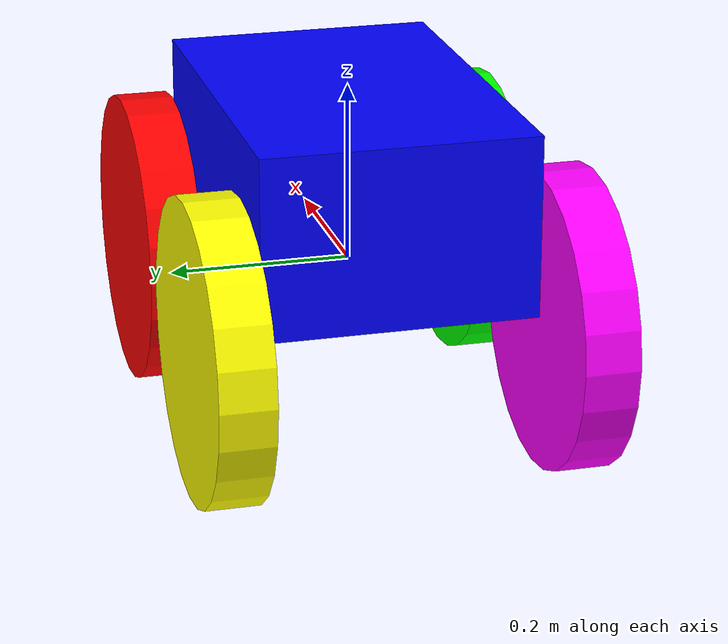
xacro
<?xml version="1.0"?>
<robot xmlns:xacro="http://www.ros.org/wiki/xacro" name="qwacr">
  <!-- Arguments -->
  <xacro:arg name="use_gazebo" default="false"/>
  <xacro:arg name="serial_port" default="/tmp/ttyV0"/>
  <xacro:arg name="baud_rate" default="115200"/>

  <!-- Base -->
  <link name="base_link">
    <visual>
      <origin xyz="0 0 .1" rpy="0 0 0"/>
      <geometry>
        <box size=".45 .3 .2"/>
      </geometry>
      <material name="blue">
        <color rgba="0 0 1 1"/>
      </material>
    </visual>
    <collision>
      <origin xyz="0 0 .1" rpy="0 0 0"/>
      <geometry>
        <box size=".45 .3 .2"/>
      </geometry>
    </collision>
    <inertial>
      <mass value="25.0"/>
      <inertia ixx="0.05" ixy="0.0" ixz="0.0" iyy="0.06" iyz="0.0" izz="0.07"/>
    </inertial>
  </link>

  <gazebo reference="base_link">
    <material>Gazebo/Blue</material>
  </gazebo>

  <!-- Front left wheel -->
  <joint name="base_to_front_left_wheel" type="continuous">
    <parent link="base_link"/>
    <child link="front_left_wheel_link"/>
    <origin xyz="0.18 0.19 -0.02" rpy="0 0 0"/>
    <axis xyz="0 1 0"/>
    <limit effort="6.2" velocity="104"/>
    <dynamics damping=".0001" friction="0.001"/>
  </joint>
  <link name="front_left_wheel_link">
    <visual>
      <origin xyz="0 0 0" rpy="1.5708 0 0"/>
      <geometry>
        <cylinder radius="0.165" length="0.06"/>
      </geometry>
      <material name="red">
        <color rgba="1 0 0 1"/>
      </material>
    </visual>
    <collision>
      <origin xyz="0 0 0" rpy="1.5708 0 0"/>
      <geometry>
        <cylinder radius="0.165" length="0.06"/>
      </geometry>
    </collision>
    <inertial>
      <mass value="1.0"/>
      <inertia ixx="0.001" ixy="0.0" ixz="0.0" iyy="0.001" iyz="0.0" izz="0.001"/>
    </inertial>
  </link>

  <gazebo reference="front_left_wheel_link">
    <material>Gazebo/Red</material>
  </gazebo>

  <!-- Front right wheel -->
  <joint name="base_to_front_right_wheel" type="continuous">
    <parent link="base_link"/>
    <child link="front_right_wheel_link"/>
    <origin xyz="0.18 -0.19 -0.02" rpy="0 0 0"/>
    <axis xyz="0 1 0"/>
    <limit effort="6.2" velocity="104"/>
    <dynamics damping=".0001" friction="0.001"/>
  </joint>
  <link name="front_right_wheel_link">
    <visual>
      <origin xyz="0 0 0" rpy="1.5708 0 0"/>
      <geometry>
        <cylinder radius="0.165" length="0.06"/>
      </geometry>
      <material name="green">
        <color rgba="0 1 0 1"/>
      </material>
    </visual>
    <collision>
      <origin xyz="0 0 0" rpy="1.5708 0 0"/>
      <geometry>
        <cylinder radius="0.165" length="0.06"/>
      </geometry>
    </collision>
    <inertial>
      <mass value="1.0"/>
      <inertia ixx="0.001" ixy="0.0" ixz="0.0" iyy="0.001" iyz="0.0" izz="0.001"/>
    </inertial>
  </link>

  <gazebo reference="front_right_wheel_link">
    <material>Gazebo/Green</material>
  </gazebo>

  <!-- Back left wheel -->
  <joint name="base_to_back_left_wheel" type="continuous">
    <parent link="base_link"/>
    <child link="back_left_wheel_link"/>
    <origin xyz="-0.18 0.19 -0.02" rpy="0 0 0"/>
    <axis xyz="0 1 0"/>
    <limit effort="6.2" velocity="104"/>
    <dynamics damping=".0001" friction="0.001"/>
  </joint>
  <link name="back_left_wheel_link">
    <visual>
      <origin xyz="0 0 0" rpy="1.5708 0 0"/>
      <geometry>
        <cylinder radius="0.165" length="0.06"/>
      </geometry>
      <material name="yellow">
        <color rgba="1 1 0 1"/>
      </material>
    </visual>
    <collision>
      <origin xyz="0 0 0" rpy="1.5708 0 0"/>
      <geometry>
        <cylinder radius="0.165" length="0.06"/>
      </geometry>
    </collision>
    <inertial>
      <mass value="3.0"/>
      <inertia ixx="0.002" ixy="0.0" ixz="0.0" iyy="0.002" iyz="0.0" izz="0.002"/>
    </inertial>
  </link>

  <gazebo reference="back_left_wheel_link">
    <material>Gazebo/Yellow</material>
  </gazebo>

  <!-- Back right wheel -->
  <joint name="base_to_back_right_wheel" type="continuous">
    <parent link="base_link"/>
    <child link="back_right_wheel_link"/>
    <origin xyz="-0.18 -0.19 -0.02" rpy="0 0 0"/>
    <axis xyz="0 1 0"/>
    <limit effort="6.2" velocity="104"/>
    <dynamics damping=".0001" friction="0.001"/>
  </joint>
  <link name="back_right_wheel_link">
    <visual>
      <origin xyz="0 0 0" rpy="1.5708 0 0"/>
      <geometry>
        <cylinder radius="0.165" length="0.06"/>
      </geometry>
      <material name="purple">
        <color rgba="1 0 1 1"/>
      </material>
    </visual>
    <collision>
      <origin xyz="0 0 0" rpy="1.5708 0 0"/>
      <geometry>
        <cylinder radius="0.165" length="0.06"/>
      </geometry>
    </collision>
    <inertial>
      <mass value="3.0"/>
      <inertia ixx="0.002" ixy="0.0" ixz="0.0" iyy="0.002" iyz="0.0" izz="0.002"/>
    </inertial>
  </link>

  <gazebo reference="back_right_wheel_link">
    <material>Gazebo/Purple</material>
  </gazebo>

  <!-- ros2_control: use hardware plugin with serial simulator for development -->
  <xacro:unless value="$(arg use_gazebo)">
    <ros2_control name="MegaDiffDriveHardware" type="system">
      <hardware>
        <plugin>mega_diff_drive_control/MegaDiffDriveHardware</plugin>
        <param name="serial_port">$(arg serial_port)</param>
        <param name="baud_rate">$(arg baud_rate)</param>
      </hardware>
      <joint name="base_to_front_left_wheel">
        <command_interface name="velocity"/>
        <state_interface name="velocity"/>
        <state_interface name="position"/>
      </joint>
      <joint name="base_to_front_right_wheel">
        <command_interface name="velocity"/>
        <state_interface name="velocity"/>
        <state_interface name="position"/>
      </joint>
      <joint name="base_to_back_left_wheel">
        <command_interface name="velocity"/>
        <state_interface name="velocity"/>
        <state_interface name="position"/>
      </joint>
      <joint name="base_to_back_right_wheel">
        <command_interface name="velocity"/>
        <state_interface name="velocity"/>
        <state_interface name="position"/>
      </joint>
    </ros2_control>
  </xacro:unless>

  <!-- Gazebo simulation mode: use hardware plugin via PTY simulator -->
  <xacro:if value="$(arg use_gazebo)">
    <ros2_control name="MegaDiffDriveHardware" type="system">
      <hardware>
        <plugin>mega_diff_drive_control/MegaDiffDriveHardware</plugin>
        <param name="serial_port">$(arg serial_port)</param>
        <param name="baud_rate">$(arg baud_rate)</param>
      </hardware>
      <joint name="base_to_front_left_wheel">
        <command_interface name="velocity"/>
        <state_interface name="velocity"/>
        <state_interface name="position"/>
      </joint>
      <joint name="base_to_front_right_wheel">
        <command_interface name="velocity"/>
        <state_interface name="velocity"/>
        <state_interface name="position"/>
      </joint>
      <joint name="base_to_back_left_wheel">
        <command_interface name="velocity"/>
        <state_interface name="velocity"/>
        <state_interface name="position"/>
      </joint>
      <joint name="base_to_back_right_wheel">
        <command_interface name="velocity"/>
        <state_interface name="velocity"/>
        <state_interface name="position"/>
      </joint>
    </ros2_control>
  </xacro:if>

</robot>
